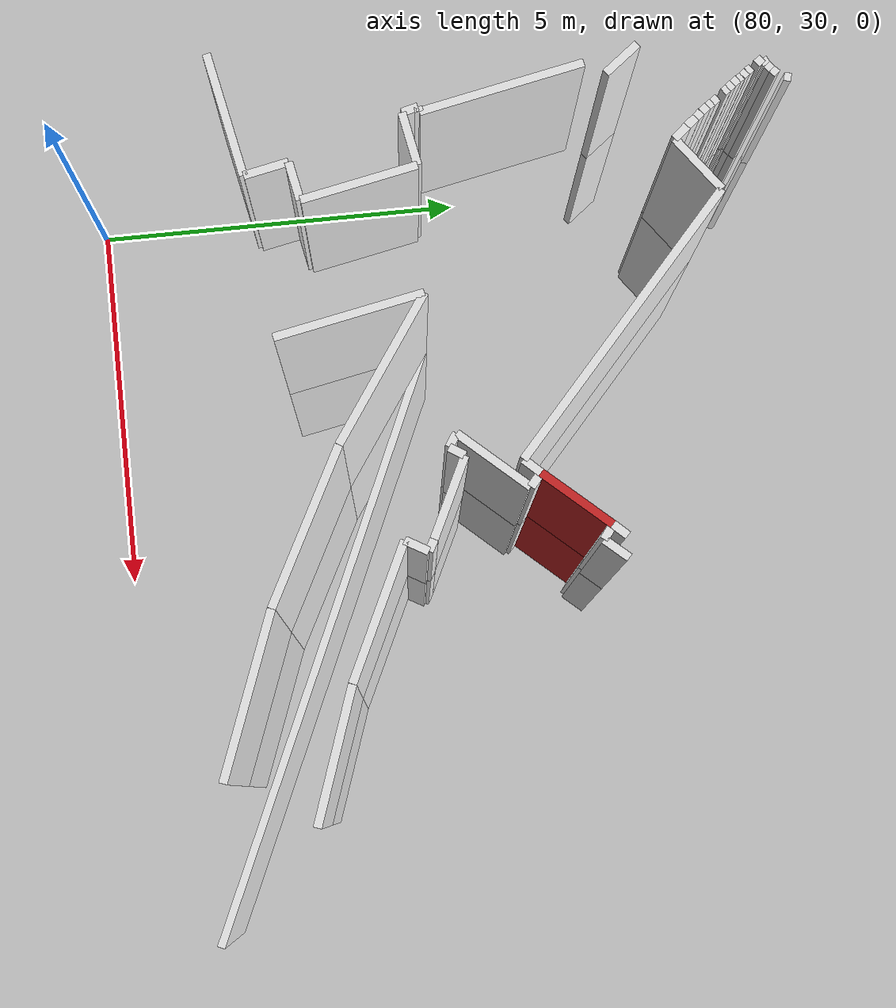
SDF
<sdf version="1.6">
 <world name="default">
  <model name="wall_85.3_35.8_1.5">
   <static>true</static>
   <pose>85.27999999999884 35.77000000001863 1.5 0 0 0.8424789459730314</pose>
   <link name="link">
    <visual name="visual">
     <geometry><box><size>0.9915644206490059 0.1 3</size></box></geometry>
     <material>
      <script><uri>file://media/materials/scripts/gazebo.material</uri><name>Gazebo/Red</name></script>
     </material>
    </visual>
    <collision name="collision"><geometry><box><size>0.9915644206490059 0.1 3</size></box></geometry></collision>
   </link>
  </model>
  <model name="wall_85.3_35.8_4.5">
   <static>true</static>
   <pose>85.27999999999884 35.77000000001863 4.5 0 0 0.8424789459730314</pose>
   <link name="link">
    <visual name="visual">
     <geometry><box><size>0.9915644206490059 0.1 3</size></box></geometry>
     <material>
      <script><uri>file://media/materials/scripts/gazebo.material</uri><name>Gazebo/Red</name></script>
     </material>
    </visual>
    <collision name="collision"><geometry><box><size>0.9915644206490059 0.1 3</size></box></geometry></collision>
   </link>
  </model>
  <model name="wall_85.7_36.2_1.5">
   <static>true</static>
   <pose>85.67999999999302 36.21500000008382 1.5 0 0 -2.3217253895523142</pose>
   <link name="link">
    <visual name="visual">
     <geometry><box><size>0.20518284522827895 0.1 3</size></box></geometry>
     <material>
      <script><uri>file://media/materials/scripts/gazebo.material</uri><name>Gazebo/White</name></script>
     </material>
    </visual>
    <collision name="collision"><geometry><box><size>0.20518284522827895 0.1 3</size></box></geometry></collision>
   </link>
  </model>
  <model name="wall_84.9_35.3_1.5">
   <static>true</static>
   <pose>84.86500000001979 35.31000000005588 1.5 0 0 -2.3276308331322193</pose>
   <link name="link">
    <visual name="visual">
     <geometry><box><size>0.24758836783494145 0.1 3</size></box></geometry>
     <material>
      <script><uri>file://media/materials/scripts/gazebo.material</uri><name>Gazebo/White</name></script>
     </material>
    </visual>
    <collision name="collision"><geometry><box><size>0.24758836783494145 0.1 3</size></box></geometry></collision>
   </link>
  </model>
  <model name="wall_83.3_36.5_1.5">
   <static>true</static>
   <pose>83.3300000000163 36.515000000130385 1.5 0 0 2.4126008939400343</pose>
   <link name="link">
    <visual name="visual">
     <geometry><box><size>3.8882000976497033 0.1 3</size></box></geometry>
     <material>
      <script><uri>file://media/materials/scripts/gazebo.material</uri><name>Gazebo/White</name></script>
     </material>
    </visual>
    <collision name="collision"><geometry><box><size>3.8882000976497033 0.1 3</size></box></geometry></collision>
   </link>
  </model>
  <model name="wall_81.6_37.6_1.5">
   <static>true</static>
   <pose>81.55999999999767 37.574999999953434 1.5 0 0 -2.508166770423084</pose>
   <link name="link">
    <visual name="visual">
     <geometry><box><size>0.7940403013767493 0.1 3</size></box></geometry>
     <material>
      <script><uri>file://media/materials/scripts/gazebo.material</uri><name>Gazebo/White</name></script>
     </material>
    </visual>
    <collision name="collision"><geometry><box><size>0.7940403013767493 0.1 3</size></box></geometry></collision>
   </link>
  </model>
  <model name="wall_81.2_37.4_1.5">
   <static>true</static>
   <pose>81.1699999999837 37.419999999925494 1.5 0 0 2.2896263260044316</pose>
   <link name="link">
    <visual name="visual">
     <geometry><box><size>0.21260291637603487 0.1 3</size></box></geometry>
     <material>
      <script><uri>file://media/materials/scripts/gazebo.material</uri><name>Gazebo/White</name></script>
     </material>
    </visual>
    <collision name="collision"><geometry><box><size>0.21260291637603487 0.1 3</size></box></geometry></collision>
   </link>
  </model>
  <model name="wall_81.1_37.6_1.5">
   <static>true</static>
   <pose>81.05499999999302 37.55499999993481 1.5 0 0 2.2565258381046025</pose>
   <link name="link">
    <visual name="visual">
     <geometry><box><size>0.1421267039139652 0.1 3</size></box></geometry>
     <material>
      <script><uri>file://media/materials/scripts/gazebo.material</uri><name>Gazebo/White</name></script>
     </material>
    </visual>
    <collision name="collision"><geometry><box><size>0.1421267039139652 0.1 3</size></box></geometry></collision>
   </link>
  </model>
  <model name="wall_81.0_37.6_1.5">
   <static>true</static>
   <pose>80.98000000001048 37.64500000001863 1.5 0 0 2.2794225967996993</pose>
   <link name="link">
    <visual name="visual">
     <geometry><box><size>0.09219544479768974 0.1 3</size></box></geometry>
     <material>
      <script><uri>file://media/materials/scripts/gazebo.material</uri><name>Gazebo/White</name></script>
     </material>
    </visual>
    <collision name="collision"><geometry><box><size>0.09219544479768974 0.1 3</size></box></geometry></collision>
   </link>
  </model>
  <model name="wall_80.9_37.7_1.5">
   <static>true</static>
   <pose>80.9200000000128 37.71999999997206 1.5 0 0 2.2142974379164873</pose>
   <link name="link">
    <visual name="visual">
     <geometry><box><size>0.09999999968567863 0.1 3</size></box></geometry>
     <material>
      <script><uri>file://media/materials/scripts/gazebo.material</uri><name>Gazebo/White</name></script>
     </material>
    </visual>
    <collision name="collision"><geometry><box><size>0.09999999968567863 0.1 3</size></box></geometry></collision>
   </link>
  </model>
  <model name="wall_80.9_37.8_1.5">
   <static>true</static>
   <pose>80.86999999999534 37.78999999980442 1.5 0 0 2.158798930342464</pose>
   <link name="link">
    <visual name="visual">
     <geometry><box><size>0.0721110255764384 0.1 3</size></box></geometry>
     <material>
      <script><uri>file://media/materials/scripts/gazebo.material</uri><name>Gazebo/White</name></script>
     </material>
    </visual>
    <collision name="collision"><geometry><box><size>0.0721110255764384 0.1 3</size></box></geometry></collision>
   </link>
  </model>
  <model name="wall_80.8_37.9_1.5">
   <static>true</static>
   <pose>80.82499999998254 37.85499999998137 1.5 0 0 2.1910458106539252</pose>
   <link name="link">
    <visual name="visual">
     <geometry><box><size>0.08602325290617123 0.1 3</size></box></geometry>
     <material>
      <script><uri>file://media/materials/scripts/gazebo.material</uri><name>Gazebo/White</name></script>
     </material>
    </visual>
    <collision name="collision"><geometry><box><size>0.08602325290617123 0.1 3</size></box></geometry></collision>
   </link>
  </model>
  <model name="wall_80.7_38.0_1.5">
   <static>true</static>
   <pose>80.72000000000116 37.98999999999069 1.5 0 0 2.158798929670837</pose>
   <link name="link">
    <visual name="visual">
     <geometry><box><size>0.07211102554415061 0.1 3</size></box></geometry>
     <material>
      <script><uri>file://media/materials/scripts/gazebo.material</uri><name>Gazebo/White</name></script>
     </material>
    </visual>
    <collision name="collision"><geometry><box><size>0.07211102554415061 0.1 3</size></box></geometry></collision>
   </link>
  </model>
  <model name="wall_80.7_38.1_1.5">
   <static>true</static>
   <pose>80.67500000001746 38.050000000046566 1.5 0 0 2.2655346024190655</pose>
   <link name="link">
    <visual name="visual">
     <geometry><box><size>0.07810249679454152 0.1 3</size></box></geometry>
     <material>
      <script><uri>file://media/materials/scripts/gazebo.material</uri><name>Gazebo/White</name></script>
     </material>
    </visual>
    <collision name="collision"><geometry><box><size>0.07810249679454152 0.1 3</size></box></geometry></collision>
   </link>
  </model>
  <model name="wall_80.6_38.1_1.5">
   <static>true</static>
   <pose>80.625 38.11499999999069 1.5 0 0 2.191045814350898</pose>
   <link name="link">
    <visual name="visual">
     <geometry><box><size>0.08602325256107957 0.1 3</size></box></geometry>
     <material>
      <script><uri>file://media/materials/scripts/gazebo.material</uri><name>Gazebo/White</name></script>
     </material>
    </visual>
    <collision name="collision"><geometry><box><size>0.08602325256107957 0.1 3</size></box></geometry></collision>
   </link>
  </model>
  <model name="wall_80.6_38.2_1.5">
   <static>true</static>
   <pose>80.58499999999185 38.175000000046566 1.5 0 0 2.1112158241550976</pose>
   <link name="link">
    <visual name="visual">
     <geometry><box><size>0.058309519172461015 0.1 3</size></box></geometry>
     <material>
      <script><uri>file://media/materials/scripts/gazebo.material</uri><name>Gazebo/White</name></script>
     </material>
    </visual>
    <collision name="collision">
     <geometry><box><size>0.058309519172461015 0.1 3</size></box></geometry>
    </collision>
   </link>
  </model>
  <model name="wall_80.5_38.2_1.5">
   <static>true</static>
   <pose>80.5450000000128 38.22999999998137 1.5 0 0 2.265534606235961</pose>
   <link name="link">
    <visual name="visual">
     <geometry><box><size>0.07810249643681061 0.1 3</size></box></geometry>
     <material>
      <script><uri>file://media/materials/scripts/gazebo.material</uri><name>Gazebo/White</name></script>
     </material>
    </visual>
    <collision name="collision"><geometry><box><size>0.07810249643681061 0.1 3</size></box></geometry></collision>
   </link>
  </model>
  <model name="wall_80.5_38.3_1.5">
   <static>true</static>
   <pose>80.5 38.28999999980442 1.5 0 0 2.158798930342464</pose>
   <link name="link">
    <visual name="visual">
     <geometry><box><size>0.0721110255764384 0.1 3</size></box></geometry>
     <material>
      <script><uri>file://media/materials/scripts/gazebo.material</uri><name>Gazebo/White</name></script>
     </material>
    </visual>
    <collision name="collision"><geometry><box><size>0.0721110255764384 0.1 3</size></box></geometry></collision>
   </link>
  </model>
  <model name="wall_80.4_38.4_1.5">
   <static>true</static>
   <pose>80.41000000000349 38.419999999925494 1.5 0 0 2.2142974351225195</pose>
   <link name="link">
    <visual name="visual">
     <geometry><box><size>0.10000000005820765 0.1 3</size></box></geometry>
     <material>
      <script><uri>file://media/materials/scripts/gazebo.material</uri><name>Gazebo/White</name></script>
     </material>
    </visual>
    <collision name="collision"><geometry><box><size>0.10000000005820765 0.1 3</size></box></geometry></collision>
   </link>
  </model>
  <model name="wall_80.4_38.5_1.5">
   <static>true</static>
   <pose>80.4200000000128 38.47999999998137 1.5 0 0 0.4636476092918444</pose>
   <link name="link">
    <visual name="visual">
     <geometry><box><size>0.0894427191312291 0.1 3</size></box></geometry>
     <material>
      <script><uri>file://media/materials/scripts/gazebo.material</uri><name>Gazebo/White</name></script>
     </material>
    </visual>
    <collision name="collision"><geometry><box><size>0.0894427191312291 0.1 3</size></box></geometry></collision>
   </link>
  </model>
  <model name="wall_80.5_38.5_1.5">
   <static>true</static>
   <pose>80.49000000001979 38.52499999990687 1.5 0 0 0.6947382743836776</pose>
   <link name="link">
    <visual name="visual">
     <geometry><box><size>0.07810249663803426 0.1 3</size></box></geometry>
     <material>
      <script><uri>file://media/materials/scripts/gazebo.material</uri><name>Gazebo/White</name></script>
     </material>
    </visual>
    <collision name="collision"><geometry><box><size>0.07810249663803426 0.1 3</size></box></geometry></collision>
   </link>
  </model>
  <model name="wall_80.6_38.6_1.5">
   <static>true</static>
   <pose>80.55000000001746 38.579999999841675 1.5 0 0 0.7853981638825122</pose>
   <link name="link">
    <visual name="visual">
     <geometry><box><size>0.084852813780252 0.1 3</size></box></geometry>
     <material>
      <script><uri>file://media/materials/scripts/gazebo.material</uri><name>Gazebo/White</name></script>
     </material>
    </visual>
    <collision name="collision"><geometry><box><size>0.084852813780252 0.1 3</size></box></geometry></collision>
   </link>
  </model>
  <model name="wall_80.6_38.7_1.5">
   <static>true</static>
   <pose>80.63000000000466 38.71999999997206 1.5 0 0 1.3258176622984403</pose>
   <link name="link">
    <visual name="visual">
     <geometry><box><size>0.08246211213739423 0.1 3</size></box></geometry>
     <material>
      <script><uri>file://media/materials/scripts/gazebo.material</uri><name>Gazebo/White</name></script>
     </material>
    </visual>
    <collision name="collision"><geometry><box><size>0.08246211213739423 0.1 3</size></box></geometry></collision>
   </link>
  </model>
  <model name="wall_87.9_32.8_1.5">
   <static>true</static>
   <pose>87.86499999999069 32.80499999993481 1.5 0 0 2.8081238857159727</pose>
   <link name="link">
    <visual name="visual">
     <geometry><box><size>1.6191973319729474 0.1 3</size></box></geometry>
     <material>
      <script><uri>file://media/materials/scripts/gazebo.material</uri><name>Gazebo/White</name></script>
     </material>
    </visual>
    <collision name="collision"><geometry><box><size>1.6191973319729474 0.1 3</size></box></geometry></collision>
   </link>
  </model>
  <model name="wall_86.3_33.4_1.5">
   <static>true</static>
   <pose>86.3299999999872 33.43499999982305 1.5 0 0 2.6989393348950688</pose>
   <link name="link">
    <visual name="visual">
     <geometry><box><size>1.704259369904788 0.1 3</size></box></geometry>
     <material>
      <script><uri>file://media/materials/scripts/gazebo.material</uri><name>Gazebo/White</name></script>
     </material>
    </visual>
    <collision name="collision"><geometry><box><size>1.704259369904788 0.1 3</size></box></geometry></collision>
   </link>
  </model>
  <model name="wall_85.6_33.9_1.5">
   <static>true</static>
   <pose>85.63500000000931 33.92999999993481 1.5 0 0 1.0475180049988588</pose>
   <link name="link">
    <visual name="visual">
     <geometry><box><size>0.3001666206174493 0.1 3</size></box></geometry>
     <material>
      <script><uri>file://media/materials/scripts/gazebo.material</uri><name>Gazebo/White</name></script>
     </material>
    </visual>
    <collision name="collision"><geometry><box><size>0.3001666206174493 0.1 3</size></box></geometry></collision>
   </link>
  </model>
  <model name="wall_85.6_34.1_1.5">
   <static>true</static>
   <pose>85.64500000001863 34.09499999997206 1.5 0 0 2.647651285684841</pose>
   <link name="link">
    <visual name="visual">
     <geometry><box><size>0.14764823052695686 0.1 3</size></box></geometry>
     <material>
      <script><uri>file://media/materials/scripts/gazebo.material</uri><name>Gazebo/White</name></script>
     </material>
    </visual>
    <collision name="collision"><geometry><box><size>0.14764823052695686 0.1 3</size></box></geometry></collision>
   </link>
  </model>
  <model name="wall_85.1_34.3_1.5">
   <static>true</static>
   <pose>85.125 34.3499999998603 1.5 0 0 2.6912186013369697</pose>
   <link name="link">
    <visual name="visual">
     <geometry><box><size>1.0107917688674317 0.1 3</size></box></geometry>
     <material>
      <script><uri>file://media/materials/scripts/gazebo.material</uri><name>Gazebo/White</name></script>
     </material>
    </visual>
    <collision name="collision"><geometry><box><size>1.0107917688674317 0.1 3</size></box></geometry></collision>
   </link>
  </model>
  <model name="wall_84.6_34.5_1.5">
   <static>true</static>
   <pose>84.61499999999069 34.484999999869615 1.5 0 0 -2.145101157111568</pose>
   <link name="link">
    <visual name="visual">
     <geometry><box><size>0.20248456724302388 0.1 3</size></box></geometry>
     <material>
      <script><uri>file://media/materials/scripts/gazebo.material</uri><name>Gazebo/White</name></script>
     </material>
    </visual>
    <collision name="collision"><geometry><box><size>0.20248456724302388 0.1 3</size></box></geometry></collision>
   </link>
  </model>
  <model name="wall_84.5_34.4_1.5">
   <static>true</static>
   <pose>84.48499999998603 34.449999999953434 1.5 0 0 2.5535900496840247</pose>
   <link name="link">
    <visual name="visual">
     <geometry><box><size>0.18027756384423263 0.1 3</size></box></geometry>
     <material>
      <script><uri>file://media/materials/scripts/gazebo.material</uri><name>Gazebo/White</name></script>
     </material>
    </visual>
    <collision name="collision"><geometry><box><size>0.18027756384423263 0.1 3</size></box></geometry></collision>
   </link>
  </model>
  <model name="wall_84.8_34.9_1.5">
   <static>true</static>
   <pose>84.75499999997555 34.88500000000931 1.5 0 0 0.8401379434576747</pose>
   <link name="link">
    <visual name="visual">
     <geometry><box><size>1.0339245620604522 0.1 3</size></box></geometry>
     <material>
      <script><uri>file://media/materials/scripts/gazebo.material</uri><name>Gazebo/White</name></script>
     </material>
    </visual>
    <collision name="collision"><geometry><box><size>1.0339245620604522 0.1 3</size></box></geometry></collision>
   </link>
  </model>
  <model name="wall_85.0_35.3_1.5">
   <static>true</static>
   <pose>85.02499999999418 35.33499999996275 1.5 0 0 2.427501955287879</pose>
   <link name="link">
    <visual name="visual">
     <geometry><box><size>0.19849433231320573 0.1 3</size></box></geometry>
     <material>
      <script><uri>file://media/materials/scripts/gazebo.material</uri><name>Gazebo/White</name></script>
     </material>
    </visual>
    <collision name="collision"><geometry><box><size>0.19849433231320573 0.1 3</size></box></geometry></collision>
   </link>
  </model>
  <model name="wall_85.7_36.1_1.5">
   <static>true</static>
   <pose>85.69000000000233 36.080000000074506 1.5 0 0 -0.6435011091425303</pose>
   <link name="link">
    <visual name="visual">
     <geometry><box><size>0.20000000009313226 0.1 3</size></box></geometry>
     <material>
      <script><uri>file://media/materials/scripts/gazebo.material</uri><name>Gazebo/White</name></script>
     </material>
    </visual>
    <collision name="collision"><geometry><box><size>0.20000000009313226 0.1 3</size></box></geometry></collision>
   </link>
  </model>
  <model name="wall_85.9_36.1_1.5">
   <static>true</static>
   <pose>85.88500000000931 36.14999999990687 1.5 0 0 0.8465463256603086</pose>
   <link name="link">
    <visual name="visual">
     <geometry><box><size>0.34713109897444044 0.1 3</size></box></geometry>
     <material>
      <script><uri>file://media/materials/scripts/gazebo.material</uri><name>Gazebo/White</name></script>
     </material>
    </visual>
    <collision name="collision"><geometry><box><size>0.34713109897444044 0.1 3</size></box></geometry></collision>
   </link>
  </model>
  <model name="wall_80.4_35.4_4.5">
   <static>true</static>
   <pose>80.42999999999302 35.425000000046566 4.5 0 0 -1.368474698376931</pose>
   <link name="link">
    <visual name="visual">
     <geometry><box><size>1.9906029234704192 0.1 3</size></box></geometry>
     <material>
      <script><uri>file://media/materials/scripts/gazebo.material</uri><name>Gazebo/White</name></script>
     </material>
    </visual>
    <collision name="collision"><geometry><box><size>1.9906029234704192 0.1 3</size></box></geometry></collision>
   </link>
  </model>
  <model name="wall_80.6_34.4_4.5">
   <static>true</static>
   <pose>80.60000000000582 34.44500000006519 4.5 0 0 -2.9764439722422162</pose>
   <link name="link">
    <visual name="visual">
     <geometry><box><size>0.060827625340493775 0.1 3</size></box></geometry>
     <material>
      <script><uri>file://media/materials/scripts/gazebo.material</uri><name>Gazebo/White</name></script>
     </material>
    </visual>
    <collision name="collision">
     <geometry><box><size>0.060827625340493775 0.1 3</size></box></geometry>
    </collision>
   </link>
  </model>
  <model name="wall_80.6_34.3_4.5">
   <static>true</static>
   <pose>80.59500000000116 34.34499999997206 4.5 0 0 -1.3134726118087283</pose>
   <link name="link">
    <visual name="visual">
     <geometry><box><size>0.1964688269868828 0.1 3</size></box></geometry>
     <material>
      <script><uri>file://media/materials/scripts/gazebo.material</uri><name>Gazebo/White</name></script>
     </material>
    </visual>
    <collision name="collision"><geometry><box><size>0.1964688269868828 0.1 3</size></box></geometry></collision>
   </link>
  </model>
  <model name="wall_80.9_34.3_4.5">
   <static>true</static>
   <pose>80.94000000000233 34.31000000005588 4.5 0 0 0.18534795016043343</pose>
   <link name="link">
    <visual name="visual">
     <geometry><box><size>0.6511528238783146 0.1 3</size></box></geometry>
     <material>
      <script><uri>file://media/materials/scripts/gazebo.material</uri><name>Gazebo/White</name></script>
     </material>
    </visual>
    <collision name="collision"><geometry><box><size>0.6511528238783146 0.1 3</size></box></geometry></collision>
   </link>
  </model>
  <model name="wall_81.4_33.7_4.5">
   <static>true</static>
   <pose>81.39999999999418 33.68000000016764 4.5 0 0 -1.3706152588342921</pose>
   <link name="link">
    <visual name="visual">
     <geometry><box><size>1.408119313011009 0.1 3</size></box></geometry>
     <material>
      <script><uri>file://media/materials/scripts/gazebo.material</uri><name>Gazebo/White</name></script>
     </material>
    </visual>
    <collision name="collision"><geometry><box><size>1.408119313011009 0.1 3</size></box></geometry></collision>
   </link>
  </model>
  <model name="wall_81.3_32.9_4.5">
   <static>true</static>
   <pose>81.30999999999767 32.94500000006519 4.5 0 0 -2.9483811690637367</pose>
   <link name="link">
    <visual name="visual">
     <geometry><box><size>0.4687216658345593 0.1 3</size></box></geometry>
     <material>
      <script><uri>file://media/materials/scripts/gazebo.material</uri><name>Gazebo/White</name></script>
     </material>
    </visual>
    <collision name="collision"><geometry><box><size>0.4687216658345593 0.1 3</size></box></geometry></collision>
   </link>
  </model>
  <model name="wall_81.1_32.6_4.5">
   <static>true</static>
   <pose>81.13500000000931 32.63500000000931 4.5 0 0 -1.3661545169134668</pose>
   <link name="link">
    <visual name="visual">
     <geometry><box><size>0.5412947439055198 0.1 3</size></box></geometry>
     <material>
      <script><uri>file://media/materials/scripts/gazebo.material</uri><name>Gazebo/White</name></script>
     </material>
    </visual>
    <collision name="collision"><geometry><box><size>0.5412947439055198 0.1 3</size></box></geometry></collision>
   </link>
  </model>
  <model name="wall_80.4_32.2_4.5">
   <static>true</static>
   <pose>80.44500000000698 32.21999999997206 4.5 0 0 -2.942906771693948</pose>
   <link name="link">
    <visual name="visual">
     <geometry><box><size>1.5199013126318053 0.1 3</size></box></geometry>
     <material>
      <script><uri>file://media/materials/scripts/gazebo.material</uri><name>Gazebo/White</name></script>
     </material>
    </visual>
    <collision name="collision"><geometry><box><size>1.5199013126318053 0.1 3</size></box></geometry></collision>
   </link>
  </model>
  <model name="wall_80.2_36.8_1.5">
   <static>true</static>
   <pose>80.22500000000582 36.84000000008382 1.5 0 0 -0.911486258352942</pose>
   <link name="link">
    <visual name="visual">
     <geometry><box><size>0.5060632370801604 0.1 3</size></box></geometry>
     <material>
      <script><uri>file://media/materials/scripts/gazebo.material</uri><name>Gazebo/White</name></script>
     </material>
    </visual>
    <collision name="collision"><geometry><box><size>0.5060632370801604 0.1 3</size></box></geometry></collision>
   </link>
  </model>
  <model name="wall_82.9_33.4_1.5">
   <static>true</static>
   <pose>82.93499999999767 33.419999999925494 1.5 0 0 1.767098990916609</pose>
   <link name="link">
    <visual name="visual">
     <geometry><box><size>1.7944637079631676 0.1 3</size></box></geometry>
     <material>
      <script><uri>file://media/materials/scripts/gazebo.material</uri><name>Gazebo/White</name></script>
     </material>
    </visual>
    <collision name="collision"><geometry><box><size>1.7944637079631676 0.1 3</size></box></geometry></collision>
   </link>
  </model>
  <model name="wall_83.6_33.7_1.5">
   <static>true</static>
   <pose>83.58499999999185 33.734999999869615 1.5 0 0 -0.6004846182035232</pose>
   <link name="link">
    <visual name="visual">
     <geometry><box><size>1.9998499942826147 0.1 3</size></box></geometry>
     <material>
      <script><uri>file://media/materials/scripts/gazebo.material</uri><name>Gazebo/White</name></script>
     </material>
    </visual>
    <collision name="collision"><geometry><box><size>1.9998499942826147 0.1 3</size></box></geometry></collision>
   </link>
  </model>
  <model name="wall_85.3_32.7_1.5">
   <static>true</static>
   <pose>85.2949999999837 32.70999999996275 1.5 0 0 -0.47934138766953305</pose>
   <link name="link">
    <visual name="visual">
     <geometry><box><size>1.9948182874459637 0.1 3</size></box></geometry>
     <material>
      <script><uri>file://media/materials/scripts/gazebo.material</uri><name>Gazebo/White</name></script>
     </material>
    </visual>
    <collision name="collision"><geometry><box><size>1.9948182874459637 0.1 3</size></box></geometry></collision>
   </link>
  </model>
  <model name="wall_87.1_31.9_1.5">
   <static>true</static>
   <pose>87.11499999999069 31.899999999906868 1.5 0 0 -0.3581845039546106</pose>
   <link name="link">
    <visual name="visual">
     <geometry><box><size>1.9967223142548778 0.1 3</size></box></geometry>
     <material>
      <script><uri>file://media/materials/scripts/gazebo.material</uri><name>Gazebo/White</name></script>
     </material>
    </visual>
    <collision name="collision"><geometry><box><size>1.9967223142548778 0.1 3</size></box></geometry></collision>
   </link>
  </model>
  <model name="wall_86.4_32.7_1.5">
   <static>true</static>
   <pose>86.38000000000466 32.68999999994412 1.5 0 0 2.723112045214399</pose>
   <link name="link">
    <visual name="visual">
     <geometry><box><size>7.923761732800008 0.1 3</size></box></geometry>
     <material>
      <script><uri>file://media/materials/scripts/gazebo.material</uri><name>Gazebo/White</name></script>
     </material>
    </visual>
    <collision name="collision"><geometry><box><size>7.923761732800008 0.1 3</size></box></geometry></collision>
   </link>
  </model>
  <model name="wall_85.7_36.2_4.5">
   <static>true</static>
   <pose>85.67999999999302 36.21500000008382 4.5 0 0 -2.3217253895523142</pose>
   <link name="link">
    <visual name="visual">
     <geometry><box><size>0.20518284522827895 0.1 3</size></box></geometry>
     <material>
      <script><uri>file://media/materials/scripts/gazebo.material</uri><name>Gazebo/White</name></script>
     </material>
    </visual>
    <collision name="collision"><geometry><box><size>0.20518284522827895 0.1 3</size></box></geometry></collision>
   </link>
  </model>
  <model name="wall_84.9_35.3_4.5">
   <static>true</static>
   <pose>84.86500000001979 35.31000000005588 4.5 0 0 -2.3276308331322193</pose>
   <link name="link">
    <visual name="visual">
     <geometry><box><size>0.24758836783494145 0.1 3</size></box></geometry>
     <material>
      <script><uri>file://media/materials/scripts/gazebo.material</uri><name>Gazebo/White</name></script>
     </material>
    </visual>
    <collision name="collision"><geometry><box><size>0.24758836783494145 0.1 3</size></box></geometry></collision>
   </link>
  </model>
  <model name="wall_83.3_36.5_4.5">
   <static>true</static>
   <pose>83.3300000000163 36.515000000130385 4.5 0 0 2.4126008939400343</pose>
   <link name="link">
    <visual name="visual">
     <geometry><box><size>3.8882000976497033 0.1 3</size></box></geometry>
     <material>
      <script><uri>file://media/materials/scripts/gazebo.material</uri><name>Gazebo/White</name></script>
     </material>
    </visual>
    <collision name="collision"><geometry><box><size>3.8882000976497033 0.1 3</size></box></geometry></collision>
   </link>
  </model>
  <model name="wall_81.6_37.6_4.5">
   <static>true</static>
   <pose>81.55999999999767 37.574999999953434 4.5 0 0 -2.508166770423084</pose>
   <link name="link">
    <visual name="visual">
     <geometry><box><size>0.7940403013767493 0.1 3</size></box></geometry>
     <material>
      <script><uri>file://media/materials/scripts/gazebo.material</uri><name>Gazebo/White</name></script>
     </material>
    </visual>
    <collision name="collision"><geometry><box><size>0.7940403013767493 0.1 3</size></box></geometry></collision>
   </link>
  </model>
  <model name="wall_81.2_37.4_4.5">
   <static>true</static>
   <pose>81.1699999999837 37.419999999925494 4.5 0 0 2.2896263260044316</pose>
   <link name="link">
    <visual name="visual">
     <geometry><box><size>0.21260291637603487 0.1 3</size></box></geometry>
     <material>
      <script><uri>file://media/materials/scripts/gazebo.material</uri><name>Gazebo/White</name></script>
     </material>
    </visual>
    <collision name="collision"><geometry><box><size>0.21260291637603487 0.1 3</size></box></geometry></collision>
   </link>
  </model>
  <model name="wall_81.1_37.6_4.5">
   <static>true</static>
   <pose>81.05499999999302 37.55499999993481 4.5 0 0 2.2565258381046025</pose>
   <link name="link">
    <visual name="visual">
     <geometry><box><size>0.1421267039139652 0.1 3</size></box></geometry>
     <material>
      <script><uri>file://media/materials/scripts/gazebo.material</uri><name>Gazebo/White</name></script>
     </material>
    </visual>
    <collision name="collision"><geometry><box><size>0.1421267039139652 0.1 3</size></box></geometry></collision>
   </link>
  </model>
  <model name="wall_81.0_37.6_4.5">
   <static>true</static>
   <pose>80.98000000001048 37.64500000001863 4.5 0 0 2.2794225967996993</pose>
   <link name="link">
    <visual name="visual">
     <geometry><box><size>0.09219544479768974 0.1 3</size></box></geometry>
     <material>
      <script><uri>file://media/materials/scripts/gazebo.material</uri><name>Gazebo/White</name></script>
     </material>
    </visual>
    <collision name="collision"><geometry><box><size>0.09219544479768974 0.1 3</size></box></geometry></collision>
   </link>
  </model>
  <model name="wall_80.9_37.7_4.5">
   <static>true</static>
   <pose>80.9200000000128 37.71999999997206 4.5 0 0 2.2142974379164873</pose>
   <link name="link">
    <visual name="visual">
     <geometry><box><size>0.09999999968567863 0.1 3</size></box></geometry>
     <material>
      <script><uri>file://media/materials/scripts/gazebo.material</uri><name>Gazebo/White</name></script>
     </material>
    </visual>
    <collision name="collision"><geometry><box><size>0.09999999968567863 0.1 3</size></box></geometry></collision>
   </link>
  </model>
  <model name="wall_80.9_37.8_4.5">
   <static>true</static>
   <pose>80.86999999999534 37.78999999980442 4.5 0 0 2.158798930342464</pose>
   <link name="link">
    <visual name="visual">
     <geometry><box><size>0.0721110255764384 0.1 3</size></box></geometry>
     <material>
      <script><uri>file://media/materials/scripts/gazebo.material</uri><name>Gazebo/White</name></script>
     </material>
    </visual>
    <collision name="collision"><geometry><box><size>0.0721110255764384 0.1 3</size></box></geometry></collision>
   </link>
  </model>
  <model name="wall_80.8_37.9_4.5">
   <static>true</static>
   <pose>80.82499999998254 37.85499999998137 4.5 0 0 2.1910458106539252</pose>
   <link name="link">
    <visual name="visual">
     <geometry><box><size>0.08602325290617123 0.1 3</size></box></geometry>
     <material>
      <script><uri>file://media/materials/scripts/gazebo.material</uri><name>Gazebo/White</name></script>
     </material>
    </visual>
    <collision name="collision"><geometry><box><size>0.08602325290617123 0.1 3</size></box></geometry></collision>
   </link>
  </model>
  <model name="wall_80.7_38.0_4.5">
   <static>true</static>
   <pose>80.72000000000116 37.98999999999069 4.5 0 0 2.158798929670837</pose>
   <link name="link">
    <visual name="visual">
     <geometry><box><size>0.07211102554415061 0.1 3</size></box></geometry>
     <material>
      <script><uri>file://media/materials/scripts/gazebo.material</uri><name>Gazebo/White</name></script>
     </material>
    </visual>
    <collision name="collision"><geometry><box><size>0.07211102554415061 0.1 3</size></box></geometry></collision>
   </link>
  </model>
  <model name="wall_80.7_38.1_4.5">
   <static>true</static>
   <pose>80.67500000001746 38.050000000046566 4.5 0 0 2.2655346024190655</pose>
   <link name="link">
    <visual name="visual">
     <geometry><box><size>0.07810249679454152 0.1 3</size></box></geometry>
     <material>
      <script><uri>file://media/materials/scripts/gazebo.material</uri><name>Gazebo/White</name></script>
     </material>
    </visual>
    <collision name="collision"><geometry><box><size>0.07810249679454152 0.1 3</size></box></geometry></collision>
   </link>
  </model>
  <model name="wall_80.6_38.1_4.5">
   <static>true</static>
   <pose>80.625 38.11499999999069 4.5 0 0 2.191045814350898</pose>
   <link name="link">
    <visual name="visual">
     <geometry><box><size>0.08602325256107957 0.1 3</size></box></geometry>
     <material>
      <script><uri>file://media/materials/scripts/gazebo.material</uri><name>Gazebo/White</name></script>
     </material>
    </visual>
    <collision name="collision"><geometry><box><size>0.08602325256107957 0.1 3</size></box></geometry></collision>
   </link>
  </model>
  <model name="wall_80.6_38.2_4.5">
   <static>true</static>
   <pose>80.58499999999185 38.175000000046566 4.5 0 0 2.1112158241550976</pose>
   <link name="link">
    <visual name="visual">
     <geometry><box><size>0.058309519172461015 0.1 3</size></box></geometry>
     <material>
      <script><uri>file://media/materials/scripts/gazebo.material</uri><name>Gazebo/White</name></script>
     </material>
    </visual>
    <collision name="collision">
     <geometry><box><size>0.058309519172461015 0.1 3</size></box></geometry>
    </collision>
   </link>
  </model>
  <model name="wall_80.5_38.2_4.5">
   <static>true</static>
   <pose>80.5450000000128 38.22999999998137 4.5 0 0 2.265534606235961</pose>
   <link name="link">
    <visual name="visual">
     <geometry><box><size>0.07810249643681061 0.1 3</size></box></geometry>
     <material>
      <script><uri>file://media/materials/scripts/gazebo.material</uri><name>Gazebo/White</name></script>
     </material>
    </visual>
    <collision name="collision"><geometry><box><size>0.07810249643681061 0.1 3</size></box></geometry></collision>
   </link>
  </model>
  <model name="wall_80.5_38.3_4.5">
   <static>true</static>
   <pose>80.5 38.28999999980442 4.5 0 0 2.158798930342464</pose>
   <link name="link">
    <visual name="visual">
     <geometry><box><size>0.0721110255764384 0.1 3</size></box></geometry>
     <material>
      <script><uri>file://media/materials/scripts/gazebo.material</uri><name>Gazebo/White</name></script>
     </material>
    </visual>
    <collision name="collision"><geometry><box><size>0.0721110255764384 0.1 3</size></box></geometry></collision>
   </link>
  </model>
  <model name="wall_80.4_38.4_4.5">
   <static>true</static>
   <pose>80.41000000000349 38.419999999925494 4.5 0 0 2.2142974351225195</pose>
   <link name="link">
    <visual name="visual">
     <geometry><box><size>0.10000000005820765 0.1 3</size></box></geometry>
     <material>
      <script><uri>file://media/materials/scripts/gazebo.material</uri><name>Gazebo/White</name></script>
     </material>
    </visual>
    <collision name="collision"><geometry><box><size>0.10000000005820765 0.1 3</size></box></geometry></collision>
   </link>
  </model>
  <model name="wall_80.4_38.5_4.5">
   <static>true</static>
   <pose>80.4200000000128 38.47999999998137 4.5 0 0 0.4636476092918444</pose>
   <link name="link">
    <visual name="visual">
     <geometry><box><size>0.0894427191312291 0.1 3</size></box></geometry>
     <material>
      <script><uri>file://media/materials/scripts/gazebo.material</uri><name>Gazebo/White</name></script>
     </material>
    </visual>
    <collision name="collision"><geometry><box><size>0.0894427191312291 0.1 3</size></box></geometry></collision>
   </link>
  </model>
  <model name="wall_80.5_38.5_4.5">
   <static>true</static>
   <pose>80.49000000001979 38.52499999990687 4.5 0 0 0.6947382743836776</pose>
   <link name="link">
    <visual name="visual">
     <geometry><box><size>0.07810249663803426 0.1 3</size></box></geometry>
     <material>
      <script><uri>file://media/materials/scripts/gazebo.material</uri><name>Gazebo/White</name></script>
     </material>
    </visual>
    <collision name="collision"><geometry><box><size>0.07810249663803426 0.1 3</size></box></geometry></collision>
   </link>
  </model>
  <model name="wall_80.6_38.6_4.5">
   <static>true</static>
   <pose>80.55000000001746 38.579999999841675 4.5 0 0 0.7853981638825122</pose>
   <link name="link">
    <visual name="visual">
     <geometry><box><size>0.084852813780252 0.1 3</size></box></geometry>
     <material>
      <script><uri>file://media/materials/scripts/gazebo.material</uri><name>Gazebo/White</name></script>
     </material>
    </visual>
    <collision name="collision"><geometry><box><size>0.084852813780252 0.1 3</size></box></geometry></collision>
   </link>
  </model>
  <model name="wall_80.6_38.7_4.5">
   <static>true</static>
   <pose>80.63000000000466 38.71999999997206 4.5 0 0 1.3258176622984403</pose>
   <link name="link">
    <visual name="visual">
     <geometry><box><size>0.08246211213739423 0.1 3</size></box></geometry>
     <material>
      <script><uri>file://media/materials/scripts/gazebo.material</uri><name>Gazebo/White</name></script>
     </material>
    </visual>
    <collision name="collision"><geometry><box><size>0.08246211213739423 0.1 3</size></box></geometry></collision>
   </link>
  </model>
  <model name="wall_87.9_32.8_4.5">
   <static>true</static>
   <pose>87.86499999999069 32.80499999993481 4.5 0 0 2.8081238857159727</pose>
   <link name="link">
    <visual name="visual">
     <geometry><box><size>1.6191973319729474 0.1 3</size></box></geometry>
     <material>
      <script><uri>file://media/materials/scripts/gazebo.material</uri><name>Gazebo/White</name></script>
     </material>
    </visual>
    <collision name="collision"><geometry><box><size>1.6191973319729474 0.1 3</size></box></geometry></collision>
   </link>
  </model>
  <model name="wall_86.3_33.4_4.5">
   <static>true</static>
   <pose>86.3299999999872 33.43499999982305 4.5 0 0 2.6989393348950688</pose>
   <link name="link">
    <visual name="visual">
     <geometry><box><size>1.704259369904788 0.1 3</size></box></geometry>
     <material>
      <script><uri>file://media/materials/scripts/gazebo.material</uri><name>Gazebo/White</name></script>
     </material>
    </visual>
    <collision name="collision"><geometry><box><size>1.704259369904788 0.1 3</size></box></geometry></collision>
   </link>
  </model>
  <model name="wall_85.6_33.9_4.5">
   <static>true</static>
   <pose>85.63500000000931 33.92999999993481 4.5 0 0 1.0475180049988588</pose>
   <link name="link">
    <visual name="visual">
     <geometry><box><size>0.3001666206174493 0.1 3</size></box></geometry>
     <material>
      <script><uri>file://media/materials/scripts/gazebo.material</uri><name>Gazebo/White</name></script>
     </material>
    </visual>
    <collision name="collision"><geometry><box><size>0.3001666206174493 0.1 3</size></box></geometry></collision>
   </link>
  </model>
  <model name="wall_85.6_34.1_4.5">
   <static>true</static>
   <pose>85.64500000001863 34.09499999997206 4.5 0 0 2.647651285684841</pose>
   <link name="link">
    <visual name="visual">
     <geometry><box><size>0.14764823052695686 0.1 3</size></box></geometry>
     <material>
      <script><uri>file://media/materials/scripts/gazebo.material</uri><name>Gazebo/White</name></script>
     </material>
    </visual>
    <collision name="collision"><geometry><box><size>0.14764823052695686 0.1 3</size></box></geometry></collision>
   </link>
  </model>
  <model name="wall_85.1_34.3_4.5">
   <static>true</static>
   <pose>85.125 34.3499999998603 4.5 0 0 2.6912186013369697</pose>
   <link name="link">
    <visual name="visual">
     <geometry><box><size>1.0107917688674317 0.1 3</size></box></geometry>
     <material>
      <script><uri>file://media/materials/scripts/gazebo.material</uri><name>Gazebo/White</name></script>
     </material>
    </visual>
    <collision name="collision"><geometry><box><size>1.0107917688674317 0.1 3</size></box></geometry></collision>
   </link>
  </model>
  <model name="wall_84.6_34.5_4.5">
   <static>true</static>
   <pose>84.61499999999069 34.484999999869615 4.5 0 0 -2.145101157111568</pose>
   <link name="link">
    <visual name="visual">
     <geometry><box><size>0.20248456724302388 0.1 3</size></box></geometry>
     <material>
      <script><uri>file://media/materials/scripts/gazebo.material</uri><name>Gazebo/White</name></script>
     </material>
    </visual>
    <collision name="collision"><geometry><box><size>0.20248456724302388 0.1 3</size></box></geometry></collision>
   </link>
  </model>
  <model name="wall_84.5_34.4_4.5">
   <static>true</static>
   <pose>84.48499999998603 34.449999999953434 4.5 0 0 2.5535900496840247</pose>
   <link name="link">
    <visual name="visual">
     <geometry><box><size>0.18027756384423263 0.1 3</size></box></geometry>
     <material>
      <script><uri>file://media/materials/scripts/gazebo.material</uri><name>Gazebo/White</name></script>
     </material>
    </visual>
    <collision name="collision"><geometry><box><size>0.18027756384423263 0.1 3</size></box></geometry></collision>
   </link>
  </model>
  <model name="wall_84.8_34.9_4.5">
   <static>true</static>
   <pose>84.75499999997555 34.88500000000931 4.5 0 0 0.8401379434576747</pose>
   <link name="link">
    <visual name="visual">
     <geometry><box><size>1.0339245620604522 0.1 3</size></box></geometry>
     <material>
      <script><uri>file://media/materials/scripts/gazebo.material</uri><name>Gazebo/White</name></script>
     </material>
    </visual>
    <collision name="collision"><geometry><box><size>1.0339245620604522 0.1 3</size></box></geometry></collision>
   </link>
  </model>
  <model name="wall_85.0_35.3_4.5">
   <static>true</static>
   <pose>85.02499999999418 35.33499999996275 4.5 0 0 2.427501955287879</pose>
   <link name="link">
    <visual name="visual">
     <geometry><box><size>0.19849433231320573 0.1 3</size></box></geometry>
     <material>
      <script><uri>file://media/materials/scripts/gazebo.material</uri><name>Gazebo/White</name></script>
     </material>
    </visual>
    <collision name="collision"><geometry><box><size>0.19849433231320573 0.1 3</size></box></geometry></collision>
   </link>
  </model>
  <model name="wall_85.7_36.1_4.5">
   <static>true</static>
   <pose>85.69000000000233 36.080000000074506 4.5 0 0 -0.6435011091425303</pose>
   <link name="link">
    <visual name="visual">
     <geometry><box><size>0.20000000009313226 0.1 3</size></box></geometry>
     <material>
      <script><uri>file://media/materials/scripts/gazebo.material</uri><name>Gazebo/White</name></script>
     </material>
    </visual>
    <collision name="collision"><geometry><box><size>0.20000000009313226 0.1 3</size></box></geometry></collision>
   </link>
  </model>
  <model name="wall_85.9_36.1_4.5">
   <static>true</static>
   <pose>85.88500000000931 36.14999999990687 4.5 0 0 0.8465463256603086</pose>
   <link name="link">
    <visual name="visual">
     <geometry><box><size>0.34713109897444044 0.1 3</size></box></geometry>
     <material>
      <script><uri>file://media/materials/scripts/gazebo.material</uri><name>Gazebo/White</name></script>
     </material>
    </visual>
    <collision name="collision"><geometry><box><size>0.34713109897444044 0.1 3</size></box></geometry></collision>
   </link>
  </model>
  <model name="wall_80.2_36.8_4.5">
   <static>true</static>
   <pose>80.22500000000582 36.84000000008382 4.5 0 0 -0.911486258352942</pose>
   <link name="link">
    <visual name="visual">
     <geometry><box><size>0.5060632370801604 0.1 3</size></box></geometry>
     <material>
      <script><uri>file://media/materials/scripts/gazebo.material</uri><name>Gazebo/White</name></script>
     </material>
    </visual>
    <collision name="collision"><geometry><box><size>0.5060632370801604 0.1 3</size></box></geometry></collision>
   </link>
  </model>
  <model name="wall_82.9_33.4_4.5">
   <static>true</static>
   <pose>82.93499999999767 33.419999999925494 4.5 0 0 1.767098990916609</pose>
   <link name="link">
    <visual name="visual">
     <geometry><box><size>1.7944637079631676 0.1 3</size></box></geometry>
     <material>
      <script><uri>file://media/materials/scripts/gazebo.material</uri><name>Gazebo/White</name></script>
     </material>
    </visual>
    <collision name="collision"><geometry><box><size>1.7944637079631676 0.1 3</size></box></geometry></collision>
   </link>
  </model>
  <model name="wall_83.6_33.7_4.5">
   <static>true</static>
   <pose>83.58499999999185 33.734999999869615 4.5 0 0 -0.6004846182035232</pose>
   <link name="link">
    <visual name="visual">
     <geometry><box><size>1.9998499942826147 0.1 3</size></box></geometry>
     <material>
      <script><uri>file://media/materials/scripts/gazebo.material</uri><name>Gazebo/White</name></script>
     </material>
    </visual>
    <collision name="collision"><geometry><box><size>1.9998499942826147 0.1 3</size></box></geometry></collision>
   </link>
  </model>
  <model name="wall_85.3_32.7_4.5">
   <static>true</static>
   <pose>85.2949999999837 32.70999999996275 4.5 0 0 -0.47934138766953305</pose>
   <link name="link">
    <visual name="visual">
     <geometry><box><size>1.9948182874459637 0.1 3</size></box></geometry>
     <material>
      <script><uri>file://media/materials/scripts/gazebo.material</uri><name>Gazebo/White</name></script>
     </material>
    </visual>
    <collision name="collision"><geometry><box><size>1.9948182874459637 0.1 3</size></box></geometry></collision>
   </link>
  </model>
  <model name="wall_87.1_31.9_4.5">
   <static>true</static>
   <pose>87.11499999999069 31.899999999906868 4.5 0 0 -0.3581845039546106</pose>
   <link name="link">
    <visual name="visual">
     <geometry><box><size>1.9967223142548778 0.1 3</size></box></geometry>
     <material>
      <script><uri>file://media/materials/scripts/gazebo.material</uri><name>Gazebo/White</name></script>
     </material>
    </visual>
    <collision name="collision"><geometry><box><size>1.9967223142548778 0.1 3</size></box></geometry></collision>
   </link>
  </model>
 </world>
</sdf>
